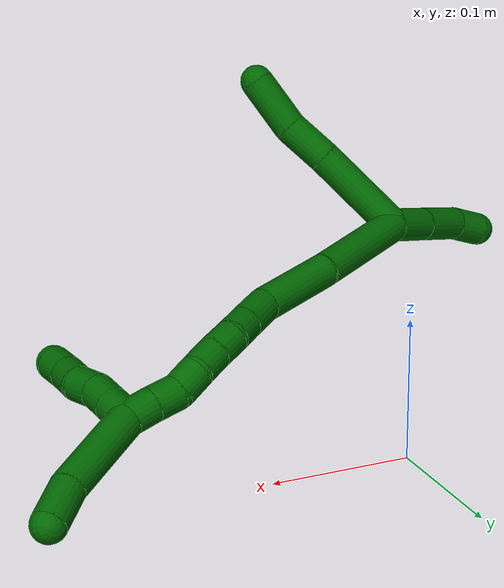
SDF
<sdf version="1.7">
 <world name="default">
  <model name="6">
   <static>0</static>
   <link name="6">
    <collision name="collision-cylinder-e_1_2_8">
     <pose>0.021622 -0.027062 -0.010762 1.94931 0.638648 0.906907</pose>
     <geometry><cylinder><radius>0.0125</radius><length>0.072545</length></cylinder></geometry>
     <surface>
      <friction><ode><mu>1.16</mu><mu2>1.16</mu2><slip1>0</slip1><slip2>0</slip2></ode></friction>
      <contact><ode><kp>1e+06</kp><kd>1</kd><max_vel>0</max_vel><min_depth>0.001</min_depth></ode></contact>
     </surface>
    </collision>
    <visual name="visual-cylinder-e_1_2_8">
     <pose>0.021622 -0.027062 -0.010762 1.94931 0.638648 0.906907</pose>
     <geometry><cylinder><radius>0.0125</radius><length>0.072545</length></cylinder></geometry>
     <material><ambient>0 0.392157 0.003922 1</ambient></material>
    </visual>
    <collision name="collision-cylinder-e_2_8_9">
     <pose>0.054253 -0.066429 -0.02679 1.97508 0.688266 0.995149</pose>
     <geometry><cylinder><radius>0.0125</radius><length>0.03466</length></cylinder></geometry>
     <surface>
      <friction><ode><mu>1.16</mu><mu2>1.16</mu2><slip1>0</slip1><slip2>0</slip2></ode></friction>
      <contact><ode><kp>1e+06</kp><kd>1</kd><max_vel>0</max_vel><min_depth>0.001</min_depth></ode></contact>
     </surface>
    </collision>
    <visual name="visual-cylinder-e_2_8_9">
     <pose>0.054253 -0.066429 -0.02679 1.97508 0.688266 0.995149</pose>
     <geometry><cylinder><radius>0.0125</radius><length>0.03466</length></cylinder></geometry>
     <material><ambient>0 0.392157 0.003922 1</ambient></material>
    </visual>
    <collision name="collision-cylinder-e_3_9_6">
     <pose>0.076364 -0.096657 -0.035715 1.77228 0.545558 0.660261</pose>
     <geometry><cylinder><radius>0.0125</radius><length>0.042795</length></cylinder></geometry>
     <surface>
      <friction><ode><mu>1.16</mu><mu2>1.16</mu2><slip1>0</slip1><slip2>0</slip2></ode></friction>
      <contact><ode><kp>1e+06</kp><kd>1</kd><max_vel>0</max_vel><min_depth>0.001</min_depth></ode></contact>
     </surface>
    </collision>
    <visual name="visual-cylinder-e_3_9_6">
     <pose>0.076364 -0.096657 -0.035715 1.77228 0.545558 0.660261</pose>
     <geometry><cylinder><radius>0.0125</radius><length>0.042795</length></cylinder></geometry>
     <material><ambient>0 0.392157 0.003922 1</ambient></material>
    </visual>
    <collision name="collision-cylinder-e_1_2_10">
     <pose>-0.01645 -0.000938 -0.006138 2.98999 -1.20988 -2.92279</pose>
     <geometry><cylinder><radius>0.0125</radius><length>0.035165</length></cylinder></geometry>
     <surface>
      <friction><ode><mu>1.16</mu><mu2>1.16</mu2><slip1>0</slip1><slip2>0</slip2></ode></friction>
      <contact><ode><kp>1e+06</kp><kd>1</kd><max_vel>0</max_vel><min_depth>0.001</min_depth></ode></contact>
     </surface>
    </collision>
    <visual name="visual-cylinder-e_1_2_10">
     <pose>-0.01645 -0.000938 -0.006138 2.98999 -1.20988 -2.92279</pose>
     <geometry><cylinder><radius>0.0125</radius><length>0.035165</length></cylinder></geometry>
     <material><ambient>0 0.392157 0.003922 1</ambient></material>
    </visual>
    <collision name="collision-cylinder-e_2_10_11">
     <pose>-0.051623 -0.002794 -0.018987 3.00557 -1.22367 -2.94803</pose>
     <geometry><cylinder><radius>0.0125</radius><length>0.039822</length></cylinder></geometry>
     <surface>
      <friction><ode><mu>1.16</mu><mu2>1.16</mu2><slip1>0</slip1><slip2>0</slip2></ode></friction>
      <contact><ode><kp>1e+06</kp><kd>1</kd><max_vel>0</max_vel><min_depth>0.001</min_depth></ode></contact>
     </surface>
    </collision>
    <visual name="visual-cylinder-e_2_10_11">
     <pose>-0.051623 -0.002794 -0.018987 3.00557 -1.22367 -2.94803</pose>
     <geometry><cylinder><radius>0.0125</radius><length>0.039822</length></cylinder></geometry>
     <material><ambient>0 0.392157 0.003922 1</ambient></material>
    </visual>
    <collision name="collision-cylinder-e_3_11_5">
     <pose>-0.082523 -0.001592 -0.027607 -2.30394 -1.34063 2.11829</pose>
     <geometry><cylinder><radius>0.0125</radius><length>0.025013</length></cylinder></geometry>
     <surface>
      <friction><ode><mu>1.16</mu><mu2>1.16</mu2><slip1>0</slip1><slip2>0</slip2></ode></friction>
      <contact><ode><kp>1e+06</kp><kd>1</kd><max_vel>0</max_vel><min_depth>0.001</min_depth></ode></contact>
     </surface>
    </collision>
    <visual name="visual-cylinder-e_3_11_5">
     <pose>-0.082523 -0.001592 -0.027607 -2.30394 -1.34063 2.11829</pose>
     <geometry><cylinder><radius>0.0125</radius><length>0.025013</length></cylinder></geometry>
     <material><ambient>0 0.392157 0.003922 1</ambient></material>
    </visual>
    <collision name="collision-cylinder-e_1_2_12">
     <pose>0.038657 0.017518 0.013899 -0.900094 1.04636 -0.543522</pose>
     <geometry><cylinder><radius>0.0125</radius><length>0.089318</length></cylinder></geometry>
     <surface>
      <friction><ode><mu>1.16</mu><mu2>1.16</mu2><slip1>0</slip1><slip2>0</slip2></ode></friction>
      <contact><ode><kp>1e+06</kp><kd>1</kd><max_vel>0</max_vel><min_depth>0.001</min_depth></ode></contact>
     </surface>
    </collision>
    <visual name="visual-cylinder-e_1_2_12">
     <pose>0.038657 0.017518 0.013899 -0.900094 1.04636 -0.543522</pose>
     <geometry><cylinder><radius>0.0125</radius><length>0.089318</length></cylinder></geometry>
     <material><ambient>0 0.392157 0.003922 1</ambient></material>
    </visual>
    <collision name="collision-cylinder-e_2_12_13">
     <pose>0.105436 0.047112 0.033568 -1.12502 1.12658 -0.757834</pose>
     <geometry><cylinder><radius>0.0125</radius><length>0.062289</length></cylinder></geometry>
     <surface>
      <friction><ode><mu>1.16</mu><mu2>1.16</mu2><slip1>0</slip1><slip2>0</slip2></ode></friction>
      <contact><ode><kp>1e+06</kp><kd>1</kd><max_vel>0</max_vel><min_depth>0.001</min_depth></ode></contact>
     </surface>
    </collision>
    <visual name="visual-cylinder-e_2_12_13">
     <pose>0.105436 0.047112 0.033568 -1.12502 1.12658 -0.757834</pose>
     <geometry><cylinder><radius>0.0125</radius><length>0.062289</length></cylinder></geometry>
     <material><ambient>0 0.392157 0.003922 1</ambient></material>
    </visual>
    <collision name="collision-cylinder-e_3_13_14">
     <pose>0.144548 0.065682 0.045404 -0.819495 0.890863 -0.408932</pose>
     <geometry><cylinder><radius>0.0125</radius><length>0.028266</length></cylinder></geometry>
     <surface>
      <friction><ode><mu>1.16</mu><mu2>1.16</mu2><slip1>0</slip1><slip2>0</slip2></ode></friction>
      <contact><ode><kp>1e+06</kp><kd>1</kd><max_vel>0</max_vel><min_depth>0.001</min_depth></ode></contact>
     </surface>
    </collision>
    <visual name="visual-cylinder-e_3_13_14">
     <pose>0.144548 0.065682 0.045404 -0.819495 0.890863 -0.408932</pose>
     <geometry><cylinder><radius>0.0125</radius><length>0.028266</length></cylinder></geometry>
     <material><ambient>0 0.392157 0.003922 1</ambient></material>
    </visual>
    <collision name="collision-cylinder-e_4_14_15">
     <pose>0.163115 0.076717 0.056162 -0.768972 0.859557 -0.366754</pose>
     <geometry><cylinder><radius>0.0125</radius><length>0.020006</length></cylinder></geometry>
     <surface>
      <friction><ode><mu>1.16</mu><mu2>1.16</mu2><slip1>0</slip1><slip2>0</slip2></ode></friction>
      <contact><ode><kp>1e+06</kp><kd>1</kd><max_vel>0</max_vel><min_depth>0.001</min_depth></ode></contact>
     </surface>
    </collision>
    <visual name="visual-cylinder-e_4_14_15">
     <pose>0.163115 0.076717 0.056162 -0.768972 0.859557 -0.366754</pose>
     <geometry><cylinder><radius>0.0125</radius><length>0.020006</length></cylinder></geometry>
     <material><ambient>0 0.392157 0.003922 1</ambient></material>
    </visual>
    <collision name="collision-cylinder-e_5_15_16">
     <pose>0.178821 0.086568 0.063406 -1.12288 0.943556 -0.621031</pose>
     <geometry><cylinder><radius>0.0125</radius><length>0.020077</length></cylinder></geometry>
     <surface>
      <friction><ode><mu>1.16</mu><mu2>1.16</mu2><slip1>0</slip1><slip2>0</slip2></ode></friction>
      <contact><ode><kp>1e+06</kp><kd>1</kd><max_vel>0</max_vel><min_depth>0.001</min_depth></ode></contact>
     </surface>
    </collision>
    <visual name="visual-cylinder-e_5_15_16">
     <pose>0.178821 0.086568 0.063406 -1.12288 0.943556 -0.621031</pose>
     <geometry><cylinder><radius>0.0125</radius><length>0.020077</length></cylinder></geometry>
     <material><ambient>0 0.392157 0.003922 1</ambient></material>
    </visual>
    <collision name="collision-cylinder-e_6_16_17">
     <pose>0.194775 0.097577 0.068512 -1.14946 0.89735 -0.604494</pose>
     <geometry><cylinder><radius>0.0125</radius><length>0.020024</length></cylinder></geometry>
     <surface>
      <friction><ode><mu>1.16</mu><mu2>1.16</mu2><slip1>0</slip1><slip2>0</slip2></ode></friction>
      <contact><ode><kp>1e+06</kp><kd>1</kd><max_vel>0</max_vel><min_depth>0.001</min_depth></ode></contact>
     </surface>
    </collision>
    <visual name="visual-cylinder-e_6_16_17">
     <pose>0.194775 0.097577 0.068512 -1.14946 0.89735 -0.604494</pose>
     <geometry><cylinder><radius>0.0125</radius><length>0.020024</length></cylinder></geometry>
     <material><ambient>0 0.392157 0.003922 1</ambient></material>
    </visual>
    <collision name="collision-cylinder-e_7_17_18">
     <pose>0.210177 0.109805 0.07134 -1.52876 0.858992 -0.827587</pose>
     <geometry><cylinder><radius>0.0125</radius><length>0.020011</length></cylinder></geometry>
     <surface>
      <friction><ode><mu>1.16</mu><mu2>1.16</mu2><slip1>0</slip1><slip2>0</slip2></ode></friction>
      <contact><ode><kp>1e+06</kp><kd>1</kd><max_vel>0</max_vel><min_depth>0.001</min_depth></ode></contact>
     </surface>
    </collision>
    <visual name="visual-cylinder-e_7_17_18">
     <pose>0.210177 0.109805 0.07134 -1.52876 0.858992 -0.827587</pose>
     <geometry><cylinder><radius>0.0125</radius><length>0.020011</length></cylinder></geometry>
     <material><ambient>0 0.392157 0.003922 1</ambient></material>
    </visual>
    <collision name="collision-cylinder-e_8_18_19">
     <pose>0.227004 0.12011 0.071191 -1.68269 1.18109 -1.28686</pose>
     <geometry><cylinder><radius>0.0125</radius><length>0.020001</length></cylinder></geometry>
     <surface>
      <friction><ode><mu>1.16</mu><mu2>1.16</mu2><slip1>0</slip1><slip2>0</slip2></ode></friction>
      <contact><ode><kp>1e+06</kp><kd>1</kd><max_vel>0</max_vel><min_depth>0.001</min_depth></ode></contact>
     </surface>
    </collision>
    <visual name="visual-cylinder-e_8_18_19">
     <pose>0.227004 0.12011 0.071191 -1.68269 1.18109 -1.28686</pose>
     <geometry><cylinder><radius>0.0125</radius><length>0.020001</length></cylinder></geometry>
     <material><ambient>0 0.392157 0.003922 1</ambient></material>
    </visual>
    <collision name="collision-cylinder-e_9_19_1">
     <pose>0.245351 0.128043 0.070545 -1.62404 1.14161 -1.19057</pose>
     <geometry><cylinder><radius>0.0125</radius><length>0.020008</length></cylinder></geometry>
     <surface>
      <friction><ode><mu>1.16</mu><mu2>1.16</mu2><slip1>0</slip1><slip2>0</slip2></ode></friction>
      <contact><ode><kp>1e+06</kp><kd>1</kd><max_vel>0</max_vel><min_depth>0.001</min_depth></ode></contact>
     </surface>
    </collision>
    <visual name="visual-cylinder-e_9_19_1">
     <pose>0.245351 0.128043 0.070545 -1.62404 1.14161 -1.19057</pose>
     <geometry><cylinder><radius>0.0125</radius><length>0.020008</length></cylinder></geometry>
     <material><ambient>0 0.392157 0.003922 1</ambient></material>
    </visual>
    <collision name="collision-cylinder-e_1_1_20">
     <pose>0.28009 0.152278 0.081026 -1.08104 0.845053 -0.5271</pose>
     <geometry><cylinder><radius>0.0125</radius><length>0.068562</length></cylinder></geometry>
     <surface>
      <friction><ode><mu>1.16</mu><mu2>1.16</mu2><slip1>0</slip1><slip2>0</slip2></ode></friction>
      <contact><ode><kp>1e+06</kp><kd>1</kd><max_vel>0</max_vel><min_depth>0.001</min_depth></ode></contact>
     </surface>
    </collision>
    <visual name="visual-cylinder-e_1_1_20">
     <pose>0.28009 0.152278 0.081026 -1.08104 0.845053 -0.5271</pose>
     <geometry><cylinder><radius>0.0125</radius><length>0.068562</length></cylinder></geometry>
     <material><ambient>0 0.392157 0.003922 1</ambient></material>
    </visual>
    <collision name="collision-cylinder-e_2_20_4">
     <pose>0.315244 0.183079 0.098181 -1.02916 0.649842 -0.376405</pose>
     <geometry><cylinder><radius>0.0125</radius><length>0.031438</length></cylinder></geometry>
     <surface>
      <friction><ode><mu>1.16</mu><mu2>1.16</mu2><slip1>0</slip1><slip2>0</slip2></ode></friction>
      <contact><ode><kp>1e+06</kp><kd>1</kd><max_vel>0</max_vel><min_depth>0.001</min_depth></ode></contact>
     </surface>
    </collision>
    <visual name="visual-cylinder-e_2_20_4">
     <pose>0.315244 0.183079 0.098181 -1.02916 0.649842 -0.376405</pose>
     <geometry><cylinder><radius>0.0125</radius><length>0.031438</length></cylinder></geometry>
     <material><ambient>0 0.392157 0.003922 1</ambient></material>
    </visual>
    <collision name="collision-cylinder-e_1_1_21">
     <pose>0.255967 0.127254 0.061766 2.61745 0.152444 0.554739</pose>
     <geometry><cylinder><radius>0.0125</radius><length>0.02</length></cylinder></geometry>
     <surface>
      <friction><ode><mu>1.16</mu><mu2>1.16</mu2><slip1>0</slip1><slip2>0</slip2></ode></friction>
      <contact><ode><kp>1e+06</kp><kd>1</kd><max_vel>0</max_vel><min_depth>0.001</min_depth></ode></contact>
     </surface>
    </collision>
    <visual name="visual-cylinder-e_1_1_21">
     <pose>0.255967 0.127254 0.061766 2.61745 0.152444 0.554739</pose>
     <geometry><cylinder><radius>0.0125</radius><length>0.02</length></cylinder></geometry>
     <material><ambient>0 0.392157 0.003922 1</ambient></material>
    </visual>
    <collision name="collision-cylinder-e_2_21_22">
     <pose>0.258993 0.117428 0.044611 2.62541 0.151406 0.559572</pose>
     <geometry><cylinder><radius>0.0125</radius><length>0.02</length></cylinder></geometry>
     <surface>
      <friction><ode><mu>1.16</mu><mu2>1.16</mu2><slip1>0</slip1><slip2>0</slip2></ode></friction>
      <contact><ode><kp>1e+06</kp><kd>1</kd><max_vel>0</max_vel><min_depth>0.001</min_depth></ode></contact>
     </surface>
    </collision>
    <visual name="visual-cylinder-e_2_21_22">
     <pose>0.258993 0.117428 0.044611 2.62541 0.151406 0.559572</pose>
     <geometry><cylinder><radius>0.0125</radius><length>0.02</length></cylinder></geometry>
     <material><ambient>0 0.392157 0.003922 1</ambient></material>
    </visual>
    <collision name="collision-cylinder-e_3_22_23">
     <pose>0.263573 0.109584 0.026971 2.82476 0.312191 1.55581</pose>
     <geometry><cylinder><radius>0.0125</radius><length>0.02</length></cylinder></geometry>
     <surface>
      <friction><ode><mu>1.16</mu><mu2>1.16</mu2><slip1>0</slip1><slip2>0</slip2></ode></friction>
      <contact><ode><kp>1e+06</kp><kd>1</kd><max_vel>0</max_vel><min_depth>0.001</min_depth></ode></contact>
     </surface>
    </collision>
    <visual name="visual-cylinder-e_3_22_23">
     <pose>0.263573 0.109584 0.026971 2.82476 0.312191 1.55581</pose>
     <geometry><cylinder><radius>0.0125</radius><length>0.02</length></cylinder></geometry>
     <material><ambient>0 0.392157 0.003922 1</ambient></material>
    </visual>
    <collision name="collision-cylinder-e_4_23_24">
     <pose>0.266734 0.102803 0.008685 2.7501 0.008924 0.045</pose>
     <geometry><cylinder><radius>0.0125</radius><length>0.02</length></cylinder></geometry>
     <surface>
      <friction><ode><mu>1.16</mu><mu2>1.16</mu2><slip1>0</slip1><slip2>0</slip2></ode></friction>
      <contact><ode><kp>1e+06</kp><kd>1</kd><max_vel>0</max_vel><min_depth>0.001</min_depth></ode></contact>
     </surface>
    </collision>
    <visual name="visual-cylinder-e_4_23_24">
     <pose>0.266734 0.102803 0.008685 2.7501 0.008924 0.045</pose>
     <geometry><cylinder><radius>0.0125</radius><length>0.02</length></cylinder></geometry>
     <material><ambient>0 0.392157 0.003922 1</ambient></material>
    </visual>
    <collision name="collision-cylinder-e_5_24_3">
     <pose>0.268032 0.094918 -0.009612 2.71917 0.12118 0.551467</pose>
     <geometry><cylinder><radius>0.0125</radius><length>0.02</length></cylinder></geometry>
     <surface>
      <friction><ode><mu>1.16</mu><mu2>1.16</mu2><slip1>0</slip1><slip2>0</slip2></ode></friction>
      <contact><ode><kp>1e+06</kp><kd>1</kd><max_vel>0</max_vel><min_depth>0.001</min_depth></ode></contact>
     </surface>
    </collision>
    <visual name="visual-cylinder-e_5_24_3">
     <pose>0.268032 0.094918 -0.009612 2.71917 0.12118 0.551467</pose>
     <geometry><cylinder><radius>0.0125</radius><length>0.02</length></cylinder></geometry>
     <material><ambient>0 0.392157 0.003922 1</ambient></material>
    </visual>
    <collision name="collision-sphere-3">
     <pose>0.269241 0.090848 -0.018666 0 -0 0</pose>
     <geometry><sphere><radius>0.0125</radius></sphere></geometry>
     <surface>
      <friction><ode><mu>1.16</mu><mu2>1.16</mu2><slip1>0</slip1><slip2>0</slip2></ode></friction>
      <contact><ode><kp>1e+06</kp><kd>1</kd><max_vel>0</max_vel><min_depth>0.001</min_depth></ode></contact>
     </surface>
    </collision>
    <visual name="visual-sphere-3">
     <pose>0.269241 0.090848 -0.018666 0 -0 0</pose>
     <geometry><sphere><radius>0.0125</radius></sphere></geometry>
     <material><ambient>0 0.392157 0.003922 1</ambient></material>
    </visual>
    <collision name="collision-sphere-24">
     <pose>0.266823 0.098988 -0.000558 0 -0 0</pose>
     <geometry><sphere><radius>0.0125</radius></sphere></geometry>
     <surface>
      <friction><ode><mu>1.16</mu><mu2>1.16</mu2><slip1>0</slip1><slip2>0</slip2></ode></friction>
      <contact><ode><kp>1e+06</kp><kd>1</kd><max_vel>0</max_vel><min_depth>0.001</min_depth></ode></contact>
     </surface>
    </collision>
    <visual name="visual-sphere-24">
     <pose>0.266823 0.098988 -0.000558 0 -0 0</pose>
     <geometry><sphere><radius>0.0125</radius></sphere></geometry>
     <material><ambient>0 0.392157 0.003922 1</ambient></material>
    </visual>
    <collision name="collision-sphere-23">
     <pose>0.266645 0.106619 0.017928 0 -0 0</pose>
     <geometry><sphere><radius>0.0125</radius></sphere></geometry>
     <surface>
      <friction><ode><mu>1.16</mu><mu2>1.16</mu2><slip1>0</slip1><slip2>0</slip2></ode></friction>
      <contact><ode><kp>1e+06</kp><kd>1</kd><max_vel>0</max_vel><min_depth>0.001</min_depth></ode></contact>
     </surface>
    </collision>
    <visual name="visual-sphere-23">
     <pose>0.266645 0.106619 0.017928 0 -0 0</pose>
     <geometry><sphere><radius>0.0125</radius></sphere></geometry>
     <material><ambient>0 0.392157 0.003922 1</ambient></material>
    </visual>
    <collision name="collision-sphere-22">
     <pose>0.260502 0.112549 0.036014 0 -0 0</pose>
     <geometry><sphere><radius>0.0125</radius></sphere></geometry>
     <surface>
      <friction><ode><mu>1.16</mu><mu2>1.16</mu2><slip1>0</slip1><slip2>0</slip2></ode></friction>
      <contact><ode><kp>1e+06</kp><kd>1</kd><max_vel>0</max_vel><min_depth>0.001</min_depth></ode></contact>
     </surface>
    </collision>
    <visual name="visual-sphere-22">
     <pose>0.260502 0.112549 0.036014 0 -0 0</pose>
     <geometry><sphere><radius>0.0125</radius></sphere></geometry>
     <material><ambient>0 0.392157 0.003922 1</ambient></material>
    </visual>
    <collision name="collision-sphere-21">
     <pose>0.257485 0.122307 0.053209 0 -0 0</pose>
     <geometry><sphere><radius>0.0125</radius></sphere></geometry>
     <surface>
      <friction><ode><mu>1.16</mu><mu2>1.16</mu2><slip1>0</slip1><slip2>0</slip2></ode></friction>
      <contact><ode><kp>1e+06</kp><kd>1</kd><max_vel>0</max_vel><min_depth>0.001</min_depth></ode></contact>
     </surface>
    </collision>
    <visual name="visual-sphere-21">
     <pose>0.257485 0.122307 0.053209 0 -0 0</pose>
     <geometry><sphere><radius>0.0125</radius></sphere></geometry>
     <material><ambient>0 0.392157 0.003922 1</ambient></material>
    </visual>
    <collision name="collision-sphere-4">
     <pose>0.324755 0.193803 0.104633 0 -0 0</pose>
     <geometry><sphere><radius>0.0125</radius></sphere></geometry>
     <surface>
      <friction><ode><mu>1.16</mu><mu2>1.16</mu2><slip1>0</slip1><slip2>0</slip2></ode></friction>
      <contact><ode><kp>1e+06</kp><kd>1</kd><max_vel>0</max_vel><min_depth>0.001</min_depth></ode></contact>
     </surface>
    </collision>
    <visual name="visual-sphere-4">
     <pose>0.324755 0.193803 0.104633 0 -0 0</pose>
     <geometry><sphere><radius>0.0125</radius></sphere></geometry>
     <material><ambient>0 0.392157 0.003922 1</ambient></material>
    </visual>
    <collision name="collision-sphere-20">
     <pose>0.305733 0.172355 0.091729 0 -0 0</pose>
     <geometry><sphere><radius>0.0125</radius></sphere></geometry>
     <surface>
      <friction><ode><mu>1.16</mu><mu2>1.16</mu2><slip1>0</slip1><slip2>0</slip2></ode></friction>
      <contact><ode><kp>1e+06</kp><kd>1</kd><max_vel>0</max_vel><min_depth>0.001</min_depth></ode></contact>
     </surface>
    </collision>
    <visual name="visual-sphere-20">
     <pose>0.305733 0.172355 0.091729 0 -0 0</pose>
     <geometry><sphere><radius>0.0125</radius></sphere></geometry>
     <material><ambient>0 0.392157 0.003922 1</ambient></material>
    </visual>
    <collision name="collision-sphere-11">
     <pose>-0.070346 -0.003712 -0.025698 0 -0 0</pose>
     <geometry><sphere><radius>0.0125</radius></sphere></geometry>
     <surface>
      <friction><ode><mu>1.16</mu><mu2>1.16</mu2><slip1>0</slip1><slip2>0</slip2></ode></friction>
      <contact><ode><kp>1e+06</kp><kd>1</kd><max_vel>0</max_vel><min_depth>0.001</min_depth></ode></contact>
     </surface>
    </collision>
    <visual name="visual-sphere-11">
     <pose>-0.070346 -0.003712 -0.025698 0 -0 0</pose>
     <geometry><sphere><radius>0.0125</radius></sphere></geometry>
     <material><ambient>0 0.392157 0.003922 1</ambient></material>
    </visual>
    <collision name="collision-sphere-10">
     <pose>-0.032899 -0.001875 -0.012275 0 -0 0</pose>
     <geometry><sphere><radius>0.0125</radius></sphere></geometry>
     <surface>
      <friction><ode><mu>1.16</mu><mu2>1.16</mu2><slip1>0</slip1><slip2>0</slip2></ode></friction>
      <contact><ode><kp>1e+06</kp><kd>1</kd><max_vel>0</max_vel><min_depth>0.001</min_depth></ode></contact>
     </surface>
    </collision>
    <visual name="visual-sphere-10">
     <pose>-0.032899 -0.001875 -0.012275 0 -0 0</pose>
     <geometry><sphere><radius>0.0125</radius></sphere></geometry>
     <material><ambient>0 0.392157 0.003922 1</ambient></material>
    </visual>
    <collision name="collision-sphere-6">
     <pose>0.087467 -0.114578 -0.039376 0 -0 0</pose>
     <geometry><sphere><radius>0.0125</radius></sphere></geometry>
     <surface>
      <friction><ode><mu>1.16</mu><mu2>1.16</mu2><slip1>0</slip1><slip2>0</slip2></ode></friction>
      <contact><ode><kp>1e+06</kp><kd>1</kd><max_vel>0</max_vel><min_depth>0.001</min_depth></ode></contact>
     </surface>
    </collision>
    <visual name="visual-sphere-6">
     <pose>0.087467 -0.114578 -0.039376 0 -0 0</pose>
     <geometry><sphere><radius>0.0125</radius></sphere></geometry>
     <material><ambient>0 0.392157 0.003922 1</ambient></material>
    </visual>
    <collision name="collision-sphere-9">
     <pose>0.065261 -0.078735 -0.032055 0 -0 0</pose>
     <geometry><sphere><radius>0.0125</radius></sphere></geometry>
     <surface>
      <friction><ode><mu>1.16</mu><mu2>1.16</mu2><slip1>0</slip1><slip2>0</slip2></ode></friction>
      <contact><ode><kp>1e+06</kp><kd>1</kd><max_vel>0</max_vel><min_depth>0.001</min_depth></ode></contact>
     </surface>
    </collision>
    <visual name="visual-sphere-9">
     <pose>0.065261 -0.078735 -0.032055 0 -0 0</pose>
     <geometry><sphere><radius>0.0125</radius></sphere></geometry>
     <material><ambient>0 0.392157 0.003922 1</ambient></material>
    </visual>
    <collision name="collision-sphere-2">
     <geometry><sphere><radius>0.0125</radius></sphere></geometry>
     <surface>
      <friction><ode><mu>1.16</mu><mu2>1.16</mu2><slip1>0</slip1><slip2>0</slip2></ode></friction>
      <contact><ode><kp>1e+06</kp><kd>1</kd><max_vel>0</max_vel><min_depth>0.001</min_depth></ode></contact>
     </surface>
    </collision>
    <visual name="visual-sphere-2">
     <geometry><sphere><radius>0.0125</radius></sphere></geometry>
     <material><ambient>0 0.392157 0.003922 1</ambient></material>
    </visual>
    <collision name="collision-sphere-19">
     <pose>0.236254 0.123886 0.070766 0 -0 0</pose>
     <geometry><sphere><radius>0.0125</radius></sphere></geometry>
     <surface>
      <friction><ode><mu>1.16</mu><mu2>1.16</mu2><slip1>0</slip1><slip2>0</slip2></ode></friction>
      <contact><ode><kp>1e+06</kp><kd>1</kd><max_vel>0</max_vel><min_depth>0.001</min_depth></ode></contact>
     </surface>
    </collision>
    <visual name="visual-sphere-19">
     <pose>0.236254 0.123886 0.070766 0 -0 0</pose>
     <geometry><sphere><radius>0.0125</radius></sphere></geometry>
     <material><ambient>0 0.392157 0.003922 1</ambient></material>
    </visual>
    <collision name="collision-sphere-8">
     <pose>0.043245 -0.054123 -0.021525 0 -0 0</pose>
     <geometry><sphere><radius>0.0125</radius></sphere></geometry>
     <surface>
      <friction><ode><mu>1.16</mu><mu2>1.16</mu2><slip1>0</slip1><slip2>0</slip2></ode></friction>
      <contact><ode><kp>1e+06</kp><kd>1</kd><max_vel>0</max_vel><min_depth>0.001</min_depth></ode></contact>
     </surface>
    </collision>
    <visual name="visual-sphere-8">
     <pose>0.043245 -0.054123 -0.021525 0 -0 0</pose>
     <geometry><sphere><radius>0.0125</radius></sphere></geometry>
     <material><ambient>0 0.392157 0.003922 1</ambient></material>
    </visual>
    <collision name="collision-sphere-5">
     <pose>-0.0947 0.000528 -0.029517 0 -0 0</pose>
     <geometry><sphere><radius>0.0125</radius></sphere></geometry>
     <surface>
      <friction><ode><mu>1.16</mu><mu2>1.16</mu2><slip1>0</slip1><slip2>0</slip2></ode></friction>
      <contact><ode><kp>1e+06</kp><kd>1</kd><max_vel>0</max_vel><min_depth>0.001</min_depth></ode></contact>
     </surface>
    </collision>
    <visual name="visual-sphere-5">
     <pose>-0.0947 0.000528 -0.029517 0 -0 0</pose>
     <geometry><sphere><radius>0.0125</radius></sphere></geometry>
     <material><ambient>0 0.392157 0.003922 1</ambient></material>
    </visual>
    <collision name="collision-sphere-12">
     <pose>0.077314 0.035036 0.027798 0 -0 0</pose>
     <geometry><sphere><radius>0.0125</radius></sphere></geometry>
     <surface>
      <friction><ode><mu>1.16</mu><mu2>1.16</mu2><slip1>0</slip1><slip2>0</slip2></ode></friction>
      <contact><ode><kp>1e+06</kp><kd>1</kd><max_vel>0</max_vel><min_depth>0.001</min_depth></ode></contact>
     </surface>
    </collision>
    <visual name="visual-sphere-12">
     <pose>0.077314 0.035036 0.027798 0 -0 0</pose>
     <geometry><sphere><radius>0.0125</radius></sphere></geometry>
     <material><ambient>0 0.392157 0.003922 1</ambient></material>
    </visual>
    <collision name="collision-sphere-13">
     <pose>0.133558 0.059188 0.039339 0 -0 0</pose>
     <geometry><sphere><radius>0.0125</radius></sphere></geometry>
     <surface>
      <friction><ode><mu>1.16</mu><mu2>1.16</mu2><slip1>0</slip1><slip2>0</slip2></ode></friction>
      <contact><ode><kp>1e+06</kp><kd>1</kd><max_vel>0</max_vel><min_depth>0.001</min_depth></ode></contact>
     </surface>
    </collision>
    <visual name="visual-sphere-13">
     <pose>0.133558 0.059188 0.039339 0 -0 0</pose>
     <geometry><sphere><radius>0.0125</radius></sphere></geometry>
     <material><ambient>0 0.392157 0.003922 1</ambient></material>
    </visual>
    <collision name="collision-sphere-14">
     <pose>0.155537 0.072176 0.05147 0 -0 0</pose>
     <geometry><sphere><radius>0.0125</radius></sphere></geometry>
     <surface>
      <friction><ode><mu>1.16</mu><mu2>1.16</mu2><slip1>0</slip1><slip2>0</slip2></ode></friction>
      <contact><ode><kp>1e+06</kp><kd>1</kd><max_vel>0</max_vel><min_depth>0.001</min_depth></ode></contact>
     </surface>
    </collision>
    <visual name="visual-sphere-14">
     <pose>0.155537 0.072176 0.05147 0 -0 0</pose>
     <geometry><sphere><radius>0.0125</radius></sphere></geometry>
     <material><ambient>0 0.392157 0.003922 1</ambient></material>
    </visual>
    <collision name="collision-sphere-15">
     <pose>0.170693 0.081257 0.060855 0 -0 0</pose>
     <geometry><sphere><radius>0.0125</radius></sphere></geometry>
     <surface>
      <friction><ode><mu>1.16</mu><mu2>1.16</mu2><slip1>0</slip1><slip2>0</slip2></ode></friction>
      <contact><ode><kp>1e+06</kp><kd>1</kd><max_vel>0</max_vel><min_depth>0.001</min_depth></ode></contact>
     </surface>
    </collision>
    <visual name="visual-sphere-15">
     <pose>0.170693 0.081257 0.060855 0 -0 0</pose>
     <geometry><sphere><radius>0.0125</radius></sphere></geometry>
     <material><ambient>0 0.392157 0.003922 1</ambient></material>
    </visual>
    <collision name="collision-sphere-16">
     <pose>0.186948 0.091879 0.065958 0 -0 0</pose>
     <geometry><sphere><radius>0.0125</radius></sphere></geometry>
     <surface>
      <friction><ode><mu>1.16</mu><mu2>1.16</mu2><slip1>0</slip1><slip2>0</slip2></ode></friction>
      <contact><ode><kp>1e+06</kp><kd>1</kd><max_vel>0</max_vel><min_depth>0.001</min_depth></ode></contact>
     </surface>
    </collision>
    <visual name="visual-sphere-16">
     <pose>0.186948 0.091879 0.065958 0 -0 0</pose>
     <geometry><sphere><radius>0.0125</radius></sphere></geometry>
     <material><ambient>0 0.392157 0.003922 1</ambient></material>
    </visual>
    <collision name="collision-sphere-17">
     <pose>0.202601 0.103275 0.071065 0 -0 0</pose>
     <geometry><sphere><radius>0.0125</radius></sphere></geometry>
     <surface>
      <friction><ode><mu>1.16</mu><mu2>1.16</mu2><slip1>0</slip1><slip2>0</slip2></ode></friction>
      <contact><ode><kp>1e+06</kp><kd>1</kd><max_vel>0</max_vel><min_depth>0.001</min_depth></ode></contact>
     </surface>
    </collision>
    <visual name="visual-sphere-17">
     <pose>0.202601 0.103275 0.071065 0 -0 0</pose>
     <geometry><sphere><radius>0.0125</radius></sphere></geometry>
     <material><ambient>0 0.392157 0.003922 1</ambient></material>
    </visual>
    <collision name="collision-sphere-18">
     <pose>0.217753 0.116335 0.071615 0 -0 0</pose>
     <geometry><sphere><radius>0.0125</radius></sphere></geometry>
     <surface>
      <friction><ode><mu>1.16</mu><mu2>1.16</mu2><slip1>0</slip1><slip2>0</slip2></ode></friction>
      <contact><ode><kp>1e+06</kp><kd>1</kd><max_vel>0</max_vel><min_depth>0.001</min_depth></ode></contact>
     </surface>
    </collision>
    <visual name="visual-sphere-18">
     <pose>0.217753 0.116335 0.071615 0 -0 0</pose>
     <geometry><sphere><radius>0.0125</radius></sphere></geometry>
     <material><ambient>0 0.392157 0.003922 1</ambient></material>
    </visual>
    <collision name="collision-sphere-1">
     <pose>0.254448 0.1322 0.070323 0 -0 0</pose>
     <geometry><sphere><radius>0.0125</radius></sphere></geometry>
     <surface>
      <friction><ode><mu>1.16</mu><mu2>1.16</mu2><slip1>0</slip1><slip2>0</slip2></ode></friction>
      <contact><ode><kp>1e+06</kp><kd>1</kd><max_vel>0</max_vel><min_depth>0.001</min_depth></ode></contact>
     </surface>
    </collision>
    <visual name="visual-sphere-1">
     <pose>0.254448 0.1322 0.070323 0 -0 0</pose>
     <geometry><sphere><radius>0.0125</radius></sphere></geometry>
     <material><ambient>0 0.392157 0.003922 1</ambient></material>
    </visual>
    <inertial>
     <pose>0.127885 0.049858 0.025383 0 -0 0</pose>
     <mass>0.75</mass>
     <inertia>
      <ixx>0.000105</ixx>
      <ixy>0</ixy>
      <ixz>0</ixz>
      <iyy>0.000126</iyy>
      <iyz>0</iyz>
      <izz>-0.000148</izz>
     </inertia>
    </inertial>
   </link>
   <pose>-0.073259 -0.164815 0.109316 -1.18434 -0.129956 0.042103</pose>
  </model>
 </world>
</sdf>
